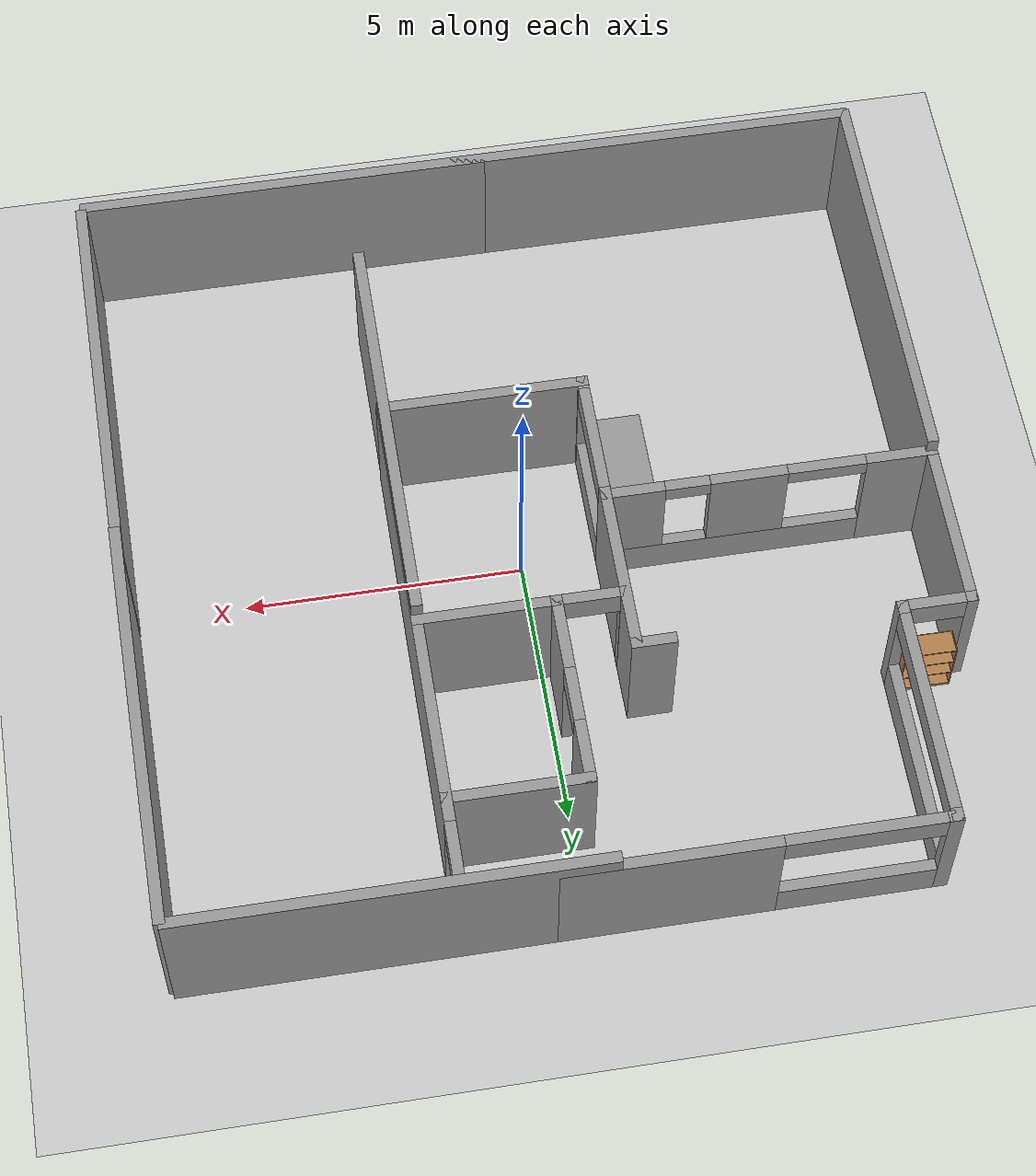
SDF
<sdf version="1.7">
 <world name="GrannyAnnie">
  <light name="sun" type="directional">
   <pose>0 0 10 0 -0 0</pose>
   <diffuse>0.8 0.8 0.8 1</diffuse>
   <specular>0.2 0.2 0.2 1</specular>
   <attenuation>
    <range>1000</range>
    <constant>0.9</constant>
    <linear>0.01</linear>
    <quadratic>0.001</quadratic>
   </attenuation>
   <direction>-0.5 0.1 -0.9</direction>
   <spot><inner_angle>0</inner_angle><outer_angle>0</outer_angle><falloff>0</falloff></spot>
  </light>
  <model name="ground_plane">
   <static>1</static>
   <link name="link">
    <collision name="collision">
     <geometry><plane><normal>0 0 1</normal><size>100 100</size></plane></geometry>
     <surface><friction><ode><mu>100</mu><mu2>50</mu2></ode></friction></surface>
    </collision>
    <visual name="visual">
     <cast_shadows>0</cast_shadows>
     <geometry><plane><normal>0 0 1</normal><size>100 100</size></plane></geometry>
     <material>
      <script><uri>file://media/materials/scripts/gazebo.material</uri><name>Gazebo/Grey</name></script>
     </material>
    </visual>
    <velocity_decay><linear>0</linear><angular>0</angular></velocity_decay>
   </link>
  </model>
  <physics type="ode">
   <max_step_size>0.01</max_step_size>
   <real_time_factor>1</real_time_factor>
   <real_time_update_rate>100</real_time_update_rate>
  </physics>
  <scene><ambient>0.4 0.4 0.4 1</ambient><background>0.7 0.7 0.7 1</background><shadows>1</shadows></scene>
  <model name="RoCKIn@Home">
   <link name="Wall_12">
    <collision name="Wall_12_Collision">
     <geometry><box><size>2.6 0.2 2.5</size></box></geometry>
     <pose>0 0 1.25 0 -0 0</pose>
    </collision>
    <visual name="Wall_12_Visual">
     <pose>0 0 1.25 0 -0 0</pose>
     <geometry><box><size>2.6 0.2 2.5</size></box></geometry>
     <material>
      <script><uri>file://media/materials/scripts/gazebo.material</uri><name>Gazebo/Grey</name></script>
     </material>
    </visual>
    <velocity_decay><linear>0</linear><angular>0</angular></velocity_decay>
    <pose>7.8 1.205 0 0 -0 1.5708</pose>
   </link>
   <link name="Wall_14">
    <pose>6.0996 2.4048 0 0 -0 3.14159</pose>
    <visual name="Wall_14_Visual_0">
     <pose>-1.20789 0 1.25 0 -0 0</pose>
     <geometry><box><size>1.18422 0.2 2.5</size></box></geometry>
     <material>
      <script><uri>file://media/materials/scripts/gazebo.material</uri><name>Gazebo/Grey</name></script>
     </material>
    </visual>
    <collision name="Wall_14_Collision_0">
     <geometry><box><size>1.18422 0.2 2.5</size></box></geometry>
     <pose>-1.20789 0 1.25 0 -0 0</pose>
    </collision>
    <visual name="Wall_14_Visual_1">
     <pose>1.09211 0 1.25 0 -0 0</pose>
     <geometry><box><size>1.41579 0.2 2.5</size></box></geometry>
     <material>
      <script><uri>file://media/materials/scripts/gazebo.material</uri><name>Gazebo/Grey</name></script>
     </material>
    </visual>
    <collision name="Wall_14_Collision_1">
     <geometry><box><size>1.41579 0.2 2.5</size></box></geometry>
     <pose>1.09211 0 1.25 0 -0 0</pose>
    </collision>
    <visual name="Wall_14_Visual_2">
     <pose>-0.115785 0 2.25 0 -0 0</pose>
     <geometry><box><size>1 0.2 0.5</size></box></geometry>
     <material>
      <script><uri>file://media/materials/scripts/gazebo.material</uri><name>Gazebo/Grey</name></script>
     </material>
    </visual>
    <collision name="Wall_14_Collision_2">
     <geometry><box><size>1 0.2 0.5</size></box></geometry>
     <pose>-0.115785 0 2.25 0 -0 0</pose>
    </collision>
    <velocity_decay><linear>0</linear><angular>0</angular></velocity_decay>
   </link>
   <link name="Wall_16">
    <collision name="Wall_16_Collision">
     <geometry><box><size>2.60492 0.2 2.5</size></box></geometry>
     <pose>0 0 1.25 0 -0 0</pose>
    </collision>
    <visual name="Wall_16_Visual">
     <pose>0 0 1.25 0 -0 0</pose>
     <geometry><box><size>2.60492 0.2 2.5</size></box></geometry>
     <material>
      <script><uri>file://media/materials/scripts/gazebo.material</uri><name>Gazebo/Grey</name></script>
     </material>
    </visual>
    <velocity_decay><linear>0</linear><angular>0</angular></velocity_decay>
    <pose>4.39903 1.20277 0 0 -0 1.5708</pose>
   </link>
   <link name="Wall_18">
    <collision name="Wall_18_Collision">
     <geometry><box><size>3.8 0.2 2.5</size></box></geometry>
     <pose>0 0 1.25 0 -0 0</pose>
    </collision>
    <visual name="Wall_18_Visual">
     <pose>0 0 1.25 0 -0 0</pose>
     <geometry><box><size>3.8 0.2 2.5</size></box></geometry>
     <material>
      <script><uri>file://media/materials/scripts/gazebo.material</uri><name>Gazebo/Grey</name></script>
     </material>
    </visual>
    <velocity_decay><linear>0</linear><angular>0</angular></velocity_decay>
    <pose>0.024876 1.80003 0 0 -0 1.5708</pose>
   </link>
   <link name="Wall_2">
    <pose>4.7266 0 0 0 -0 0</pose>
    <visual name="Wall_2_Visual_0">
     <pose>-0.649274 0 1.25 0 -0 0</pose>
     <geometry><box><size>8.30145 0.2 2.5</size></box></geometry>
     <material>
      <script><uri>file://media/materials/scripts/gazebo.material</uri><name>Gazebo/Grey</name></script>
     </material>
    </visual>
    <collision name="Wall_2_Collision_0">
     <geometry><box><size>8.30145 0.2 2.5</size></box></geometry>
     <pose>-0.649274 0 1.25 0 -0 0</pose>
    </collision>
    <visual name="Wall_2_Visual_1">
     <pose>4.65073 0 1.25 0 -0 0</pose>
     <geometry><box><size>0.298547 0.2 2.5</size></box></geometry>
     <material>
      <script><uri>file://media/materials/scripts/gazebo.material</uri><name>Gazebo/Grey</name></script>
     </material>
    </visual>
    <collision name="Wall_2_Collision_1">
     <geometry><box><size>0.298547 0.2 2.5</size></box></geometry>
     <pose>4.65073 0 1.25 0 -0 0</pose>
    </collision>
    <visual name="Wall_2_Visual_2">
     <pose>4.00145 0 2.25 0 -0 0</pose>
     <geometry><box><size>1 0.2 0.5</size></box></geometry>
     <material>
      <script><uri>file://media/materials/scripts/gazebo.material</uri><name>Gazebo/Grey</name></script>
     </material>
    </visual>
    <collision name="Wall_2_Collision_2">
     <geometry><box><size>1 0.2 0.5</size></box></geometry>
     <pose>4.00145 0 2.25 0 -0 0</pose>
    </collision>
    <velocity_decay><linear>0</linear><angular>0</angular></velocity_decay>
   </link>
   <link name="Wall_20">
    <pose>2.72456 3.60059 0 0 -0 0</pose>
    <visual name="Wall_20_Visual_0">
     <pose>-2.67396 0 1.25 0 -0 0</pose>
     <geometry><box><size>0.251208 0.2 2.5</size></box></geometry>
     <material>
      <script><uri>file://media/materials/scripts/gazebo.material</uri><name>Gazebo/Grey</name></script>
     </material>
    </visual>
    <collision name="Wall_20_Collision_0">
     <geometry><box><size>0.251208 0.2 2.5</size></box></geometry>
     <pose>-2.67396 0 1.25 0 -0 0</pose>
    </collision>
    <visual name="Wall_20_Visual_1">
     <pose>1.1766 0 1.25 0 -0 0</pose>
     <geometry><box><size>3.24591 0.2 2.5</size></box></geometry>
     <material>
      <script><uri>file://media/materials/scripts/gazebo.material</uri><name>Gazebo/Grey</name></script>
     </material>
    </visual>
    <collision name="Wall_20_Collision_1">
     <geometry><box><size>3.24591 0.2 2.5</size></box></geometry>
     <pose>1.1766 0 1.25 0 -0 0</pose>
    </collision>
    <visual name="Wall_20_Visual_2">
     <pose>-1.49735 0 2.25 0 -0 0</pose>
     <geometry><box><size>2.102 0.2 0.5</size></box></geometry>
     <material>
      <script><uri>file://media/materials/scripts/gazebo.material</uri><name>Gazebo/Grey</name></script>
     </material>
    </visual>
    <collision name="Wall_20_Collision_2">
     <geometry><box><size>2.102 0.2 0.5</size></box></geometry>
     <pose>-1.49735 0 2.25 0 -0 0</pose>
    </collision>
    <visual name="Wall_20_Visual_3">
     <pose>-1.49735 0 0.35 0 -0 0</pose>
     <geometry><box><size>2.102 0.2 0.7</size></box></geometry>
     <material>
      <script><uri>file://media/materials/scripts/gazebo.material</uri><name>Gazebo/Grey</name></script>
     </material>
    </visual>
    <collision name="Wall_20_Collision_3">
     <geometry><box><size>2.102 0.2 0.3</size></box></geometry>
     <pose>-1.49735 0 0.35 0 -0 0</pose>
    </collision>
    <velocity_decay><linear>0</linear><angular>0</angular></velocity_decay>
   </link>
   <link name="Wall_22">
    <pose>4.39856 3.00206 0 0 -0 1.5708</pose>
    <visual name="Wall_22_Visual_0">
     <pose>-0.601085 0 1.25 0 -0 0</pose>
     <geometry><box><size>0.194709 0.2 2.5</size></box></geometry>
     <material>
      <script><uri>file://media/materials/scripts/gazebo.material</uri><name>Gazebo/Grey</name></script>
     </material>
    </visual>
    <collision name="Wall_22_Collision_0">
     <geometry><box><size>0.194709 0.2 2.5</size></box></geometry>
     <pose>-0.601085 0 1.25 0 -0 0</pose>
    </collision>
    <visual name="Wall_22_Visual_1">
     <pose>0.597355 0 1.25 0 -0 0</pose>
     <geometry><box><size>0.202171 0.2 2.5</size></box></geometry>
     <material>
      <script><uri>file://media/materials/scripts/gazebo.material</uri><name>Gazebo/Grey</name></script>
     </material>
    </visual>
    <collision name="Wall_22_Collision_1">
     <geometry><box><size>0.202171 0.2 2.5</size></box></geometry>
     <pose>0.597355 0 1.25 0 -0 0</pose>
    </collision>
    <visual name="Wall_22_Visual_2">
     <pose>-0.003731 0 2.25 0 -0 0</pose>
     <geometry><box><size>1 0.2 0.5</size></box></geometry>
     <material>
      <script><uri>file://media/materials/scripts/gazebo.material</uri><name>Gazebo/Grey</name></script>
     </material>
    </visual>
    <collision name="Wall_22_Collision_2">
     <geometry><box><size>1 0.2 0.5</size></box></geometry>
     <pose>-0.003731 0 2.25 0 -0 0</pose>
    </collision>
    <velocity_decay><linear>0</linear><angular>0</angular></velocity_decay>
   </link>
   <link name="Wall_24">
    <pose>7.42703 8.20242 0 0 -0 3.14159</pose>
    <visual name="Wall_24_Visual_0">
     <pose>-1.97924 0 1.25 0 -0 0</pose>
     <geometry><box><size>0.241529 0.2 2.5</size></box></geometry>
     <material>
      <script><uri>file://media/materials/scripts/gazebo.material</uri><name>Gazebo/Grey</name></script>
     </material>
    </visual>
    <collision name="Wall_24_Collision_0">
     <geometry><box><size>0.241529 0.2 2.5</size></box></geometry>
     <pose>-1.97924 0 1.25 0 -0 0</pose>
    </collision>
    <visual name="Wall_24_Visual_1">
     <pose>1.97395 0 1.25 0 -0 0</pose>
     <geometry><box><size>0.252091 0.2 2.5</size></box></geometry>
     <material>
      <script><uri>file://media/materials/scripts/gazebo.material</uri><name>Gazebo/Grey</name></script>
     </material>
    </visual>
    <collision name="Wall_24_Collision_1">
     <geometry><box><size>0.252091 0.2 2.5</size></box></geometry>
     <pose>1.97395 0 1.25 0 -0 0</pose>
    </collision>
    <visual name="Wall_24_Visual_2">
     <pose>-0.005281 0 2.25 0 -0 0</pose>
     <geometry><box><size>3.70638 0.2 0.5</size></box></geometry>
     <material>
      <script><uri>file://media/materials/scripts/gazebo.material</uri><name>Gazebo/Grey</name></script>
     </material>
    </visual>
    <collision name="Wall_24_Collision_2">
     <geometry><box><size>3.70638 0.2 0.5</size></box></geometry>
     <pose>-0.005281 0 2.25 0 -0 0</pose>
    </collision>
    <visual name="Wall_24_Visual_3">
     <pose>-0.005281 0 0.35 0 -0 0</pose>
     <geometry><box><size>3.70638 0.2 0.7</size></box></geometry>
     <material>
      <script><uri>file://media/materials/scripts/gazebo.material</uri><name>Gazebo/Grey</name></script>
     </material>
    </visual>
    <collision name="Wall_24_Collision_3">
     <geometry><box><size>3.70638 0.2 0.7</size></box></geometry>
     <pose>-0.005281 0 0.35 0 -0 0</pose>
    </collision>
    <velocity_decay><linear>0</linear><angular>0</angular></velocity_decay>
   </link>
   <link name="Wall_28">
    <collision name="Wall_28_Collision">
     <geometry><box><size>3.2 0.2 2.5</size></box></geometry>
     <pose>0 0 1.25 0 -0 0</pose>
    </collision>
    <visual name="Wall_28_Visual">
     <pose>0 0 1.25 0 -0 0</pose>
     <geometry><box><size>3.2 0.2 2.5</size></box></geometry>
     <material>
      <script><uri>file://media/materials/scripts/gazebo.material</uri><name>Gazebo/Grey</name></script>
     </material>
    </visual>
    <velocity_decay><linear>0</linear><angular>0</angular></velocity_decay>
    <pose>3.92571 9.40229 0 0 -0 3.14159</pose>
   </link>
   <link name="Wall_30">
    <pose>2.42541 6.50159 0 0 0 -1.5708</pose>
    <visual name="Wall_30_Visual_0">
     <pose>-2.363 0 1.25 0 -0 0</pose>
     <geometry><box><size>1.27269 0.2 2.5</size></box></geometry>
     <material>
      <script><uri>file://media/materials/scripts/gazebo.material</uri><name>Gazebo/Grey</name></script>
     </material>
    </visual>
    <collision name="Wall_30_Collision_0">
     <geometry><box><size>1.27269 0.2 2.5</size></box></geometry>
     <pose>-2.363 0 1.25 0 -0 0</pose>
    </collision>
    <visual name="Wall_30_Visual_1">
     <pose>0.636346 0 0.35 0 -0 0</pose>
     <geometry><box><size>4.726 0.2 0.7</size></box></geometry>
     <material>
      <script><uri>file://media/materials/scripts/gazebo.material</uri><name>Gazebo/Grey</name></script>
     </material>
    </visual>
    <collision name="Wall_30_Collision_1">
     <geometry><box><size>4.726 0.2 0.7</size></box></geometry>
     <pose>0.636346 0 0.35 0 -0 0</pose>
    </collision>
    <visual name="Wall_30_Visual_2">
     <pose>0.36359 0 1.6 0 -0 0</pose>
     <geometry><box><size>1.38049 0.2 1.8</size></box></geometry>
     <material>
      <script><uri>file://media/materials/scripts/gazebo.material</uri><name>Gazebo/Grey</name></script>
     </material>
    </visual>
    <collision name="Wall_30_Collision_2">
     <geometry><box><size>1.38049 0.2 1.8</size></box></geometry>
     <pose>0.36359 0 1.6 0 -0 0</pose>
    </collision>
    <visual name="Wall_30_Visual_3">
     <pose>2.42659 0 1.6 0 -0 0</pose>
     <geometry><box><size>1.14551 0.2 1.8</size></box></geometry>
     <material>
      <script><uri>file://media/materials/scripts/gazebo.material</uri><name>Gazebo/Grey</name></script>
     </material>
    </visual>
    <collision name="Wall_30_Collision_3">
     <geometry><box><size>1.14551 0.2 1.8</size></box></geometry>
     <pose>2.42659 0 1.6 0 -0 0</pose>
    </collision>
    <visual name="Wall_30_Visual_4">
     <pose>-1.02665 0 2.35 0 -0 0</pose>
     <geometry><box><size>1.4 0.2 0.3</size></box></geometry>
     <material>
      <script><uri>file://media/materials/scripts/gazebo.material</uri><name>Gazebo/Grey</name></script>
     </material>
    </visual>
    <collision name="Wall_30_Collision_4">
     <geometry><box><size>1.4 0.2 0.3</size></box></geometry>
     <pose>-1.02665 0 2.35 0 -0 0</pose>
    </collision>
    <visual name="Wall_30_Visual_5">
     <pose>1.45383 0 2.35 0 -0 0</pose>
     <geometry><box><size>0.8 0.2 0.3</size></box></geometry>
     <material>
      <script><uri>file://media/materials/scripts/gazebo.material</uri><name>Gazebo/Grey</name></script>
     </material>
    </visual>
    <collision name="Wall_30_Collision_5">
     <geometry><box><size>0.8 0.2 0.3</size></box></geometry>
     <pose>1.45383 0 2.35 0 -0 0</pose>
    </collision>
    <velocity_decay><linear>0</linear><angular>0</angular></velocity_decay>
   </link>
   <link name="Wall_32">
    <pose>5.42654 8.80216 0 0 0 -1.5708</pose>
    <visual name="Wall_32_Visual_0">
     <pose>-0.599775 0 1.25 0 -0 0</pose>
     <geometry><box><size>0.199231 0.2 2.5</size></box></geometry>
     <material>
      <script><uri>file://media/materials/scripts/gazebo.material</uri><name>Gazebo/Grey</name></script>
     </material>
    </visual>
    <collision name="Wall_32_Collision_0">
     <geometry><box><size>0.199231 0.2 2.5</size></box></geometry>
     <pose>-0.599775 0 1.25 0 -0 0</pose>
    </collision>
    <visual name="Wall_32_Visual_1">
     <pose>0.599615 0 1.25 0 -0 0</pose>
     <geometry><box><size>0.199549 0.2 2.5</size></box></geometry>
     <material>
      <script><uri>file://media/materials/scripts/gazebo.material</uri><name>Gazebo/Grey</name></script>
     </material>
    </visual>
    <collision name="Wall_32_Collision_1">
     <geometry><box><size>0.199549 0.2 2.5</size></box></geometry>
     <pose>0.599615 0 1.25 0 -0 0</pose>
    </collision>
    <visual name="Wall_32_Visual_2">
     <pose>-0.000159 0 2.25 0 -0 0</pose>
     <geometry><box><size>1 0.2 0.5</size></box></geometry>
     <material>
      <script><uri>file://media/materials/scripts/gazebo.material</uri><name>Gazebo/Grey</name></script>
     </material>
    </visual>
    <collision name="Wall_32_Collision_2">
     <geometry><box><size>1 0.2 0.5</size></box></geometry>
     <pose>-0.000159 0 2.25 0 -0 0</pose>
    </collision>
    <velocity_decay><linear>0</linear><angular>0</angular></velocity_decay>
   </link>
   <link name="Wall_35">
    <collision name="Wall_35_Collision">
     <geometry><box><size>0.8 0.2 2.5</size></box></geometry>
     <pose>0 0 1.25 0 -0 0</pose>
    </collision>
    <visual name="Wall_35_Visual">
     <pose>0 0 1.25 0 -0 0</pose>
     <geometry><box><size>0.8 0.2 2.5</size></box></geometry>
     <material>
      <script><uri>file://media/materials/scripts/gazebo.material</uri><name>Gazebo/Grey</name></script>
     </material>
    </visual>
    <velocity_decay><linear>0</linear><angular>0</angular></velocity_decay>
    <pose>5.42451 3.90082 0 0 -0 1.5708</pose>
   </link>
   <link name="Wall_8">
    <pose>9.42875 4.1026 0 0 -0 1.5708</pose>
    <visual name="Wall_8_Visual_0">
     <pose>-1.48935 0 1.25 0 -0 0</pose>
     <geometry><box><size>5.42201 0.2 2.5</size></box></geometry>
     <material>
      <script><uri>file://media/materials/scripts/gazebo.material</uri><name>Gazebo/Grey</name></script>
     </material>
    </visual>
    <collision name="Wall_8_Collision_0">
     <geometry><box><size>5.42201 0.2 2.5</size></box></geometry>
     <pose>-1.48935 0 1.25 0 -0 0</pose>
    </collision>
    <visual name="Wall_8_Visual_1">
     <pose>4.07465 0 1.25 0 -0 0</pose>
     <geometry><box><size>0.251416 0.2 2.5</size></box></geometry>
     <material>
      <script><uri>file://media/materials/scripts/gazebo.material</uri><name>Gazebo/Grey</name></script>
     </material>
    </visual>
    <collision name="Wall_8_Collision_1">
     <geometry><box><size>0.251416 0.2 2.5</size></box></geometry>
     <pose>4.07465 0 1.25 0 -0 0</pose>
    </collision>
    <visual name="Wall_8_Visual_2">
     <pose>2.5853 0 2.25 0 -0 0</pose>
     <geometry><box><size>2.72728 0.2 0.5</size></box></geometry>
     <material>
      <script><uri>file://media/materials/scripts/gazebo.material</uri><name>Gazebo/Grey</name></script>
     </material>
    </visual>
    <collision name="Wall_8_Collision_2">
     <geometry><box><size>2.72728 0.2 0.5</size></box></geometry>
     <pose>2.5853 0 2.25 0 -0 0</pose>
    </collision>
    <visual name="Wall_8_Visual_3">
     <pose>2.5853 0 0.35 0 -0 0</pose>
     <geometry><box><size>2.72728 0.2 0.7</size></box></geometry>
     <material>
      <script><uri>file://media/materials/scripts/gazebo.material</uri><name>Gazebo/Grey</name></script>
     </material>
    </visual>
    <collision name="Wall_8_Collision_3">
     <geometry><box><size>2.72728 0.2 0.7</size></box></geometry>
     <pose>2.5853 0 0.35 0 -0 0</pose>
    </collision>
    <velocity_decay><linear>0</linear><angular>0</angular></velocity_decay>
   </link>
   <static>1</static>
   <pose>2.1556 -2.27801 0 0 -0 1.57</pose>
  </model>
  <spherical_coordinates>
   <surface_model>EARTH_WGS84</surface_model>
   <latitude_deg>0</latitude_deg>
   <longitude_deg>0</longitude_deg>
   <elevation>0</elevation>
   <heading_deg>0</heading_deg>
  </spherical_coordinates>
  <model name="bookshelf">
   <static>1</static>
   <link name="link">
    <inertial><mass>1</mass></inertial>
    <collision name="back">
     <pose>0 0.005 0.6 0 -0 0</pose>
     <geometry><box><size>0.9 0.01 1.2</size></box></geometry>
    </collision>
    <visual name="visual1">
     <pose>0 0.005 0.6 0 -0 0</pose>
     <geometry><box><size>0.9 0.01 1.2</size></box></geometry>
     <material>
      <script><uri>file://media/materials/scripts/gazebo.material</uri><name>Gazebo/Wood</name></script>
     </material>
    </visual>
    <collision name="left_side">
     <pose>0.45 -0.195 0.6 0 -0 0</pose>
     <geometry><box><size>0.02 0.4 1.2</size></box></geometry>
    </collision>
    <visual name="visual2">
     <pose>0.45 -0.195 0.6 0 -0 0</pose>
     <geometry><box><size>0.02 0.4 1.2</size></box></geometry>
     <material>
      <script><uri>file://media/materials/scripts/gazebo.material</uri><name>Gazebo/Wood</name></script>
     </material>
    </visual>
    <collision name="right_side">
     <pose>-0.45 -0.195 0.6 0 -0 0</pose>
     <geometry><box><size>0.02 0.4 1.2</size></box></geometry>
    </collision>
    <visual name="visual3">
     <pose>-0.45 -0.195 0.6 0 -0 0</pose>
     <geometry><box><size>0.02 0.4 1.2</size></box></geometry>
     <material>
      <script><uri>file://media/materials/scripts/gazebo.material</uri><name>Gazebo/Wood</name></script>
     </material>
    </visual>
    <collision name="bottom">
     <pose>0 -0.195 0.03 0 -0 0</pose>
     <geometry><box><size>0.88 0.4 0.06</size></box></geometry>
    </collision>
    <visual name="visual4">
     <pose>0 -0.195 0.03 0 -0 0</pose>
     <geometry><box><size>0.88 0.4 0.06</size></box></geometry>
     <material>
      <script><uri>file://media/materials/scripts/gazebo.material</uri><name>Gazebo/Wood</name></script>
     </material>
    </visual>
    <collision name="top">
     <pose>0 -0.195 1.19 0 -0 0</pose>
     <geometry><box><size>0.88 0.4 0.02</size></box></geometry>
    </collision>
    <visual name="visual5">
     <pose>0 -0.195 1.19 0 -0 0</pose>
     <geometry><box><size>0.88 0.4 0.02</size></box></geometry>
     <material>
      <script><uri>file://media/materials/scripts/gazebo.material</uri><name>Gazebo/Wood</name></script>
     </material>
    </visual>
    <collision name="low_shelf">
     <pose>0 -0.195 0.43 0 -0 0</pose>
     <geometry><box><size>0.88 0.4 0.02</size></box></geometry>
    </collision>
    <visual name="visual6">
     <pose>0 -0.195 0.43 0 -0 0</pose>
     <geometry><box><size>0.88 0.4 0.02</size></box></geometry>
     <material>
      <script><uri>file://media/materials/scripts/gazebo.material</uri><name>Gazebo/Wood</name></script>
     </material>
    </visual>
    <collision name="high_shelf">
     <pose>0 -0.195 0.8 0 -0 0</pose>
     <geometry><box><size>0.88 0.4 0.02</size></box></geometry>
    </collision>
    <visual name="visual7">
     <pose>0 -0.195 0.8 0 -0 0</pose>
     <geometry><box><size>0.88 0.4 0.02</size></box></geometry>
     <material>
      <script><uri>file://media/materials/scripts/gazebo.material</uri><name>Gazebo/Wood</name></script>
     </material>
    </visual>
    <velocity_decay><linear>0</linear><angular>0</angular></velocity_decay>
   </link>
   <pose>-6.62417 3.07498 0 0 -0 3.13796</pose>
  </model>
  <model name="grey_wall_0">
   <static>1</static>
   <link name="link">
    <pose>0 0 1.4 0 -0 0</pose>
    <collision name="collision"><geometry><box><size>7.5 0.2 2.8</size></box></geometry></collision>
    <visual name="visual">
     <cast_shadows>0</cast_shadows>
     <geometry><box><size>7.5 0.2 2.8</size></box></geometry>
     <material>
      <script>
       <uri>model://grey_wall/materials/scripts</uri>
       <uri>model://grey_wall/materials/textures</uri>
       <name>vrc/grey_wall</name>
      </script>
     </material>
    </visual>
    <velocity_decay><linear>0</linear><angular>0</angular></velocity_decay>
   </link>
   <pose>-7.25571 -3.5819 0 0 0 -1.57522</pose>
  </model>
  <model name="grey_wall_1">
   <static>1</static>
   <link name="link">
    <pose>0 0 1.4 0 -0 0</pose>
    <collision name="collision"><geometry><box><size>7.5 0.2 2.8</size></box></geometry></collision>
    <visual name="visual">
     <cast_shadows>0</cast_shadows>
     <geometry><box><size>7.5 0.2 2.8</size></box></geometry>
     <material>
      <script>
       <uri>model://grey_wall/materials/scripts</uri>
       <uri>model://grey_wall/materials/textures</uri>
       <name>vrc/grey_wall</name>
      </script>
     </material>
    </visual>
    <velocity_decay><linear>0</linear><angular>0</angular></velocity_decay>
   </link>
   <pose>3.27943 7.15202 0 0 -0 0</pose>
  </model>
  <model name="grey_wall_2">
   <static>1</static>
   <link name="link">
    <pose>0 0 1.4 0 -0 0</pose>
    <collision name="collision"><geometry><box><size>7.5 0.2 2.8</size></box></geometry></collision>
    <visual name="visual">
     <cast_shadows>0</cast_shadows>
     <geometry><box><size>7.5 0.2 2.8</size></box></geometry>
     <material>
      <script>
       <uri>model://grey_wall/materials/scripts</uri>
       <uri>model://grey_wall/materials/textures</uri>
       <name>vrc/grey_wall</name>
      </script>
     </material>
    </visual>
    <velocity_decay><linear>0</linear><angular>0</angular></velocity_decay>
   </link>
   <pose>-3.57864 -7.27256 0 0 -0 0</pose>
  </model>
  <model name="grey_wall_3">
   <static>1</static>
   <link name="link">
    <pose>0 0 1.4 0 -0 0</pose>
    <collision name="collision"><geometry><box><size>7.5 0.2 2.8</size></box></geometry></collision>
    <visual name="visual">
     <cast_shadows>0</cast_shadows>
     <geometry><box><size>7.5 0.2 2.8</size></box></geometry>
     <material>
      <script>
       <uri>model://grey_wall/materials/scripts</uri>
       <uri>model://grey_wall/materials/textures</uri>
       <name>vrc/grey_wall</name>
      </script>
     </material>
    </visual>
    <velocity_decay><linear>0</linear><angular>0</angular></velocity_decay>
   </link>
   <pose>7.02581 3.41596 0 0 0 -1.566</pose>
  </model>
  <model name="grey_wall_4">
   <static>1</static>
   <link name="link">
    <pose>0 0 1.4 0 -0 0</pose>
    <collision name="collision"><geometry><box><size>7.5 0.2 2.8</size></box></geometry></collision>
    <visual name="visual">
     <cast_shadows>0</cast_shadows>
     <geometry><box><size>7.5 0.2 2.8</size></box></geometry>
     <material>
      <script>
       <uri>model://grey_wall/materials/scripts</uri>
       <uri>model://grey_wall/materials/textures</uri>
       <name>vrc/grey_wall</name>
      </script>
     </material>
    </visual>
    <velocity_decay><linear>0</linear><angular>0</angular></velocity_decay>
   </link>
   <pose>7.03023 -3.4783 0 0 0 -1.5708</pose>
  </model>
  <model name="grey_wall_5">
   <static>1</static>
   <link name="link">
    <pose>0 0 1.4 0 -0 0</pose>
    <collision name="collision"><geometry><box><size>7.5 0.2 2.8</size></box></geometry></collision>
    <visual name="visual">
     <cast_shadows>0</cast_shadows>
     <geometry><box><size>7.5 0.2 2.8</size></box></geometry>
     <material>
      <script>
       <uri>model://grey_wall/materials/scripts</uri>
       <uri>model://grey_wall/materials/textures</uri>
       <name>vrc/grey_wall</name>
      </script>
     </material>
    </visual>
    <velocity_decay><linear>0</linear><angular>0</angular></velocity_decay>
   </link>
   <pose>3.29916 -7.27083 0 0 -0 0</pose>
  </model>
  <model name="grey_wall_6">
   <static>1</static>
   <link name="link">
    <pose>0 0 1.4 0 -0 0</pose>
    <collision name="collision"><geometry><box><size>7.5 0.2 2.8</size></box></geometry></collision>
    <visual name="visual">
     <cast_shadows>0</cast_shadows>
     <geometry><box><size>7.5 0.2 2.8</size></box></geometry>
     <material>
      <script>
       <uri>model://grey_wall/materials/scripts</uri>
       <uri>model://grey_wall/materials/textures</uri>
       <name>vrc/grey_wall</name>
      </script>
     </material>
    </visual>
    <velocity_decay><linear>0</linear><angular>0</angular></velocity_decay>
   </link>
   <pose>2.13991 -1.7222 0 0 -0 1.5708</pose>
  </model>
  <gravity>0 0 -9.8</gravity>
  <magnetic_field>6e-06 2.3e-05 -4.2e-05</magnetic_field>
  <atmosphere type="adiabatic"/>
  <model name="unit_box_0">
   <pose>-2.04377 -1.15842 0.499633 1e-06 0.00073 -0.000791</pose>
   <link name="link">
    <inertial>
     <mass>1</mass>
     <inertia>
      <ixx>0.166667</ixx>
      <ixy>0</ixy>
      <ixz>0</ixz>
      <iyy>0.166667</iyy>
      <iyz>0</iyz>
      <izz>0.166667</izz>
     </inertia>
    </inertial>
    <collision name="collision"><geometry><box><size>1 2.41056 1</size></box></geometry></collision>
    <visual name="visual">
     <geometry><box><size>1 2.41056 1</size></box></geometry>
     <material>
      <script><name>Gazebo/Grey</name><uri>file://media/materials/scripts/gazebo.material</uri></script>
     </material>
    </visual>
   </link>
  </model>
 </world>
</sdf>
